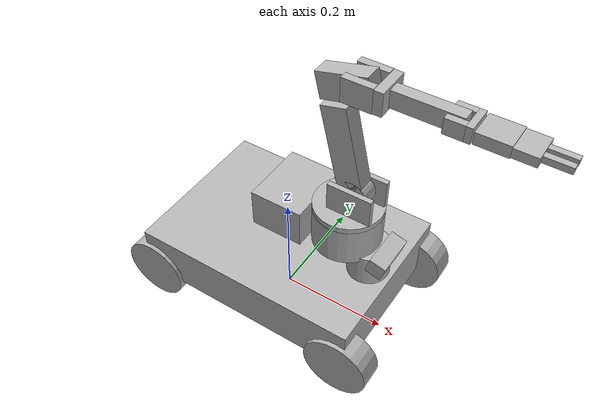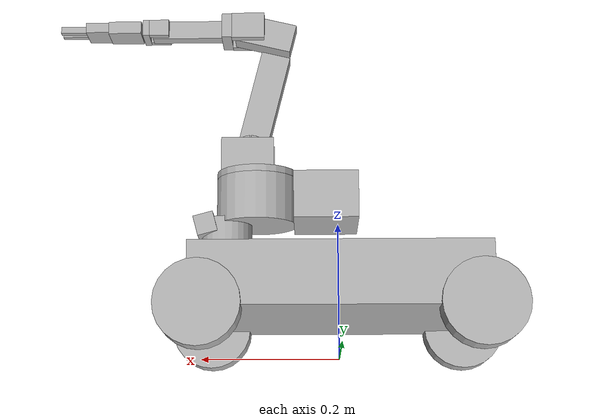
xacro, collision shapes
<?xml version="1.0" ?>
<robot name="four_wheel" xmlns:xacro="http://www.ros.org/wiki/xacro">

<xacro:arg name="use_ros2_control" default="true"/>
<xacro:arg name="sim_mode"         default="true"/>

<xacro:include filename="$(find articubot_one)/description/materials.xacro" />
<xacro:include filename="$(find articubot_one)/description/four_wheel.gazebo" />
<xacro:include filename="$(find articubot_one)/description/arm.xacro" />
<xacro:include filename="$(find articubot_one)/description/arm_gazebo.xacro" />
<xacro:include filename="$(find articubot_one)/description/arm_ros2_control.xacro" />

<xacro:if value="$(arg use_ros2_control)">
  <xacro:include filename="$(find articubot_one)/description/four_wheel.trans" />
</xacro:if>

<!-- Robot structure                                              -->

<link name="base_footprint"/>

<joint name="base_footprint_to_base_link" type="fixed">
  <parent link="base_footprint"/>
  <child link="base_link"/>
  <origin xyz="0 0 0.057" rpy="0 0 0"/>
</joint>

<link name="base_link">
  <inertial>
    <origin xyz="0.0040461 0.0 0.071553" rpy="0 0 0"/>
    <mass value="5.0"/>
    <!-- Box inertia for 0.42 x 0.30 x 0.09 m chassis at 5.0 kg -->
    <inertia ixx="0.04088" iyy="0.07688" izz="0.11100" ixy="0.0" iyz="0.0" ixz="0.0"/>
  </inertial>
  <visual>
    <origin xyz="0 0 0" rpy="0 0 0"/>
    <geometry>
      <mesh filename="file://$(find articubot_one)/meshes/base_link.stl" scale="0.0015 0.0015 0.0015"/>
    </geometry>
    <material name="silver"/>
  </visual>
  <collision>
    <origin xyz="0 0 0.045" rpy="0 0 0"/>
    <geometry>
      <!-- Primitive box replaces mesh collision for stability -->
      <box size="0.42 0.30 0.09"/>
    </geometry>
  </collision>
</link>

<link name="camera_1">
  <inertial>
    <origin xyz="0.0075 0.0 0.0045" rpy="0 0 0"/>
    <mass value="0.003564"/>
    <inertia ixx="2.25e-6" iyy="2.25e-6" izz="2.25e-6" ixy="0.0" iyz="0.0" ixz="0.0"/>
  </inertial>
  <visual>
    <origin xyz="-0.195 0.0 -0.13875" rpy="0 0 0"/>
    <geometry>
      <mesh filename="file://$(find articubot_one)/meshes/camera_1.stl" scale="0.0015 0.0015 0.0015"/>
    </geometry>
    <material name="silver"/>
  </visual>
  <collision>
    <origin xyz="0 0 0" rpy="0 0 0"/>
    <geometry>
      <box size="0.03 0.075 0.03"/>
    </geometry>
  </collision>
</link>

<link name="camera_1_optical_frame"/>
<joint name="camera_1_optical_joint" type="fixed">
  <origin xyz="0 0 0" rpy="${-pi/2} 0 ${-pi/2}"/>
  <parent link="camera_1"/>
  <child link="camera_1_optical_frame"/>
</joint>

<link name="ultra_front_1">
  <inertial>
    <origin xyz="0.0075 0.0 0.012" rpy="0 0 0"/>
    <mass value="0.014256"/>
    <inertia ixx="4.5e-06" iyy="2.25e-6" izz="2.25e-06" ixy="0.0" iyz="0.0" ixz="0.0"/>
  </inertial>
  <visual>
    <origin xyz="-0.195 0.0 -0.00375" rpy="0 0 0"/>
    <geometry>
      <mesh filename="file://$(find articubot_one)/meshes/ultra_front_1.stl" scale="0.0015 0.0015 0.0015"/>
    </geometry>
    <material name="silver"/>
  </visual>
</link>

<link name="ultra_rear_1">
  <inertial>
    <origin xyz="-0.0075 0.0 0.012" rpy="0 0 0"/>
    <mass value="0.014256"/>
    <inertia ixx="4.5e-06" iyy="2.25e-6" izz="2.25e-06" ixy="0.0" iyz="0.0" ixz="0.0"/>
  </inertial>
  <visual>
    <origin xyz="0.195 0.0 -0.00375" rpy="0 0 0"/>
    <geometry>
      <mesh filename="file://$(find articubot_one)/meshes/ultra_rear_1.stl" scale="0.0015 0.0015 0.0015"/>
    </geometry>
    <material name="silver"/>
  </visual>
</link>

<link name="lidar_1">
  <inertial>
    <origin xyz="0.0 0.0 0.015" rpy="0 0 0"/>
    <mass value="0.0699795"/>
    <inertia ixx="2.025e-05" iyy="2.025e-05" izz="3.375e-05" ixy="0.0" iyz="0.0" ixz="0.0"/>
  </inertial>
  <visual>
    <origin xyz="-0.165 0.0 -0.12" rpy="0 0 0"/>
    <geometry>
      <mesh filename="file://$(find articubot_one)/meshes/lidar_1.stl" scale="0.0015 0.0015 0.0015"/>
    </geometry>
    <material name="silver"/>
  </visual>
  <collision>
    <origin xyz="0 0 0" rpy="0 0 0"/>
    <geometry>
      <cylinder radius="0.0375" length="0.06"/>
    </geometry>
  </collision>
</link>

<!-- WHEELS - FIX: Replace mesh collision with cylinder primitive -->
<!-- Wheel radius = 0.06 m, width = 0.045 m                     -->
<!-- Cylinder axis must align with joint axis (Y-axis) → rpy π/2 -->

<link name="left_front_1">
  <inertial>
    <origin xyz="0.0 0.0225 0.0" rpy="0 0 0"/>
    <mass value="0.21036"/>
    <inertia ixx="0.00015075" iyy="0.000252" izz="0.00015075" ixy="0.0" iyz="0.0" ixz="0.0"/>
  </inertial>
  <visual>
    <origin xyz="-0.195 -0.135 -0.00375" rpy="0 0 0"/>
    <geometry>
      <mesh filename="file://$(find articubot_one)/meshes/left_front_1.stl" scale="0.0015 0.0015 0.0015"/>
    </geometry>
    <material name="silver"/>
  </visual>
  <!-- FIX: Cylinder primitive replaces mesh — stable ground contact -->
  <collision>
    <origin xyz="0 0 0" rpy="1.5707963 0 0"/>
    <geometry>
      <cylinder radius="0.06" length="0.045"/>
    </geometry>
  </collision>
</link>

<link name="right_front_1">
  <inertial>
    <origin xyz="0.0 -0.0225 0.0" rpy="0 0 0"/>
    <mass value="0.21036"/>
    <inertia ixx="0.00015075" iyy="0.000252" izz="0.00015075" ixy="0.0" iyz="0.0" ixz="0.0"/>
  </inertial>
  <visual>
    <origin xyz="-0.195 0.135 -0.00375" rpy="0 0 0"/>
    <geometry>
      <mesh filename="file://$(find articubot_one)/meshes/right_front_1.stl" scale="0.0015 0.0015 0.0015"/>
    </geometry>
    <material name="silver"/>
  </visual>
  <collision>
    <origin xyz="0 0 0" rpy="1.5707963 0 0"/>
    <geometry>
      <cylinder radius="0.06" length="0.045"/>
    </geometry>
  </collision>
</link>

<link name="right_rear_1">
  <inertial>
    <origin xyz="0.0 -0.0225 0.0" rpy="0 0 0"/>
    <mass value="0.21036"/>
    <inertia ixx="0.00015075" iyy="0.000252" izz="0.00015075" ixy="0.0" iyz="0.0" ixz="0.0"/>
  </inertial>
  <visual>
    <origin xyz="0.195 0.135 -0.00375" rpy="0 0 0"/>
    <geometry>
      <mesh filename="file://$(find articubot_one)/meshes/right_rear_1.stl" scale="0.0015 0.0015 0.0015"/>
    </geometry>
    <material name="silver"/>
  </visual>
  <collision>
    <origin xyz="0 0 0" rpy="1.5707963 0 0"/>
    <geometry>
      <cylinder radius="0.06" length="0.045"/>
    </geometry>
  </collision>
</link>

<link name="left_rear_1">
  <inertial>
    <origin xyz="0.0 0.0225 0.0" rpy="0 0 0"/>
    <mass value="0.21036"/>
    <inertia ixx="0.00015075" iyy="0.000252" izz="0.00015075" ixy="0.0" iyz="0.0" ixz="0.0"/>
  </inertial>
  <visual>
    <origin xyz="0.195 -0.135 -0.00375" rpy="0 0 0"/>
    <geometry>
      <mesh filename="file://$(find articubot_one)/meshes/left_rear_1.stl" scale="0.0015 0.0015 0.0015"/>
    </geometry>
    <material name="silver"/>
  </visual>
  <collision>
    <origin xyz="0 0 0" rpy="1.5707963 0 0"/>
    <geometry>
      <cylinder radius="0.06" length="0.045"/>
    </geometry>
  </collision>
</link>

<!-- Fixed joints -->
<joint name="Rigid 1" type="fixed">
  <origin xyz="0.195 0.0 0.13875" rpy="0 0.2618 0"/>
  <parent link="base_link"/>
  <child link="camera_1"/>
</joint>

<joint name="Rigid 2" type="fixed">
  <origin xyz="0.195 0.0 0.00375" rpy="0 0 0"/>
  <parent link="base_link"/>
  <child link="ultra_front_1"/>
</joint>

<joint name="Rigid 3" type="fixed">
  <origin xyz="-0.195 0.0 0.00375" rpy="0 0 3.14159"/>
  <parent link="base_link"/>
  <child link="ultra_rear_1"/>
</joint>

<joint name="Rigid 4" type="fixed">
  <origin xyz="0.165 0.0 0.12" rpy="0 0 0"/>
  <parent link="base_link"/>
  <child link="lidar_1"/>
</joint>

<!-- Wheel joints — axis stays Y (0 1 0) for correct skid-steer -->
<joint name="left_front_wheel_joint" type="continuous">
  <origin xyz="0.195 0.135 0.00375" rpy="0 0 0"/>
  <parent link="base_link"/>
  <child link="left_front_1"/>
  <axis xyz="0.0 1.0 0.0"/>
</joint>

<joint name="right_front_wheel_joint" type="continuous">
  <origin xyz="0.195 -0.135 0.00375" rpy="0 0 0"/>
  <parent link="base_link"/>
  <child link="right_front_1"/>
  <axis xyz="0.0 1.0 0.0"/>
</joint>

<joint name="right_rear_wheel_joint" type="continuous">
  <origin xyz="-0.195 -0.135 0.00375" rpy="0 0 0"/>
  <parent link="base_link"/>
  <child link="right_rear_1"/>
  <axis xyz="0.0 1.0 0.0"/>
</joint>

<joint name="left_rear_wheel_joint" type="continuous">
  <origin xyz="-0.195 0.135 0.00375" rpy="0 0 0"/>
  <parent link="base_link"/>
  <child link="left_rear_1"/>
  <axis xyz="0.0 1.0 0.0"/>
</joint>

<!-- Arm + gripper, mounted centered on top of the chassis        -->
<xacro:k12_arm parent="base_link" mount_x="0.12" mount_y="0.0" mount_z="0.142"/>
<xacro:k12_arm_gazebo/>

</robot>

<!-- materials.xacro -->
<robot name="four_wheel" xmlns:xacro="http://www.ros.org/wiki/xacro" >

<material name="silver">
  <color rgba="0.700 0.700 0.700 1.000"/>
</material>

</robot>

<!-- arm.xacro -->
<robot name="k12_arm" xmlns:xacro="http://www.ros.org/wiki/xacro">
  <xacro:include filename="$(find articubot_one)/description/gripper.xacro"/>

  <!-- Properties for 5-DOF arm and gripper -->
  <xacro:property name="mm"         value="0.001"/>
  <xacro:property name="mesh_dir"   value="file://$(find robot_arm_description)/meshes"/>
  <xacro:property name="mesh_scale" value="0.001 0.001 0.001"/>

  <!-- Link dimensions from STL mesh & specs -->
  <xacro:property name="pan_z"            value="0.080"/>
  <xacro:property name="shoulder_axis_x"  value="0.0098"/>
  <xacro:property name="shoulder_axis_z"  value="0.030"/>
  <xacro:property name="ua_pivot_x"       value="0.0"/>
  <xacro:property name="ua_pivot_z"       value="-0.100"/>
  <xacro:property name="ua_elbow_x"       value="0.0475"/>
  <xacro:property name="ua_elbow_z"       value="0.09428"/>
  <xacro:property name="ua_tilt"          value="${atan2(ua_elbow_x-ua_pivot_x, ua_elbow_z-ua_pivot_z)}"/>
  <xacro:property name="upper_arm_length" value="0.200"/>
  <xacro:property name="forearm_length"   value="0.140"/>
  <xacro:property name="wrist_pin_y"      value="0.0075"/>

  <!-- 5th DOF Wrist Roll Link dimensions -->
  <xacro:property name="k12_arm_roll_length" value="0.050"/> <!-- 5.0 cm -->
  <xacro:property name="wrist_roll_width"    value="0.045"/> <!-- 4.5 cm -->
  <xacro:property name="wrist_roll_height"   value="0.019"/> <!-- 1.9 cm -->

  <!-- Gripper dimensions -->
  <xacro:property name="k12_gripper_palm_length"   value="0.035"/>
  <xacro:property name="k12_gripper_palm_width"    value="0.045"/>
  <xacro:property name="k12_gripper_palm_height"   value="0.015"/>
  <xacro:property name="k12_gripper_finger_length" value="0.040"/>
  <xacro:property name="k12_gripper_finger_width"  value="0.010"/>
  <xacro:property name="k12_gripper_finger_height" value="0.010"/> <!-- 1.0 cm thickness -->
  <xacro:property name="k12_gripper_finger_travel" value="0.0115"/> <!-- (3.0cm - 0.7cm)/2 = 1.15cm per finger -->
  <xacro:property name="k12_gripper_finger_gap"    value="0.007"/>  <!-- 0.7 cm closed gap -->

  <!-- Masses -->
  <xacro:property name="base_mass"       value="1.00"/>
  <xacro:property name="shoulder_mass"   value="0.30"/>
  <xacro:property name="upper_arm_mass"  value="0.25"/>
  <xacro:property name="forearm_mass"    value="0.10"/>
  <xacro:property name="wrist_mass"      value="0.03"/>
  <xacro:property name="wrist_roll_mass" value="0.025"/>
  <xacro:property name="palm_mass"       value="0.05"/>
  <xacro:property name="finger_mass"     value="0.015"/>

  <!-- COMs and Inertia tensors -->
  <xacro:property name="base_com" value="-0.0568876 -0.000151026 0.0414031"/>
  <xacro:property name="base_i"   value="0.00274515 0.00536777 0.00712232 -5.5062e-06 0.000157223 3.21412e-07"/>
  <xacro:property name="shoulder_com" value="0.00326334 4.30231e-08 0.00316603"/>
  <xacro:property name="shoulder_i"   value="0.00104644 0.00107327 0.00165751 -1.4246e-10 -9.36904e-05 1.02401e-10"/>
  <xacro:property name="upper_arm_com" value="-0.0173272 -3.85431e-05 0.0978832"/>
  <xacro:property name="upper_arm_i"   value="0.00531897 0.00565327 0.000453664 6.67882e-07 0.000588872 3.93589e-06"/>
  <xacro:property name="forearm_com" value="0.0554396 0.00135289 -1.35141e-10"/>
  <xacro:property name="forearm_i"   value="0.000277503 0.00194742 0.00202719 5.87049e-05 -9.47073e-11 -5.95801e-11"/>
  <xacro:property name="wrist_com" value="0.012098 -0.00221546 -4.1261e-09"/>
  <xacro:property name="wrist_i"   value="0.000250781 0.000175866 0.000321848 -1.21679e-05 9.76777e-11 -1.59523e-11"/>

  <xacro:macro name="mesh_inertial" params="mass com i">
    <inertial>
      <origin xyz="${com}" rpy="0 0 0"/>
      <mass value="${mass}"/>
      <inertia ixx="${mass*float(i.split()[0])}" iyy="${mass*float(i.split()[1])}" izz="${mass*float(i.split()[2])}"
               ixy="${mass*float(i.split()[3])}" ixz="${mass*float(i.split()[4])}" iyz="${mass*float(i.split()[5])}"/>
    </inertial>
  </xacro:macro>

  <xacro:macro name="k12_box_inertial" params="mass x y z ox:=0 oy:=0 oz:=0">
    <inertial>
      <origin xyz="${ox} ${oy} ${oz}" rpy="0 0 0"/>
      <mass value="${mass}"/>
      <inertia
        ixx="${mass * (y * y + z * z) / 12.0}"
        ixy="0.0"
        ixz="0.0"
        iyy="${mass * (x * x + z * z) / 12.0}"
        iyz="0.0"
        izz="${mass * (x * x + y * y) / 12.0}"/>
    </inertial>
  </xacro:macro>

  <xacro:macro name="k12_arm_transmission" params="joint actuator">
    <transmission name="${joint}_transmission">
      <type>transmission_interface/SimpleTransmission</type>
      <joint name="${joint}">
        <hardwareInterface>hardware_interface/PositionJointInterface</hardwareInterface>
      </joint>
      <actuator name="${actuator}">
        <hardwareInterface>hardware_interface/PositionJointInterface</hardwareInterface>
        <mechanicalReduction>1</mechanicalReduction>
      </actuator>
    </transmission>
  </xacro:macro>

  <xacro:macro name="k12_arm" params="parent mount_x mount_y mount_z">
    <joint name="arm_mount_joint" type="fixed">
      <origin xyz="${mount_x} ${mount_y} ${mount_z}" rpy="0 0 0"/>
      <parent link="${parent}"/>
      <child link="arm_base_link"/>
    </joint>

    <!-- Base link -->
    <link name="arm_base_link">
      <visual>
        <origin xyz="0 0 0" rpy="0 0 0"/>
        <geometry><mesh filename="${mesh_dir}/base.stl" scale="${mesh_scale}"/></geometry>
        <material name="silver"/>
      </visual>
      <collision><origin xyz="0 0 0.035" rpy="0 0 0"/><geometry><cylinder radius="0.06" length="0.07"/></geometry></collision>
      <collision><origin xyz="-0.1025 0 0.035" rpy="0 0 0"/><geometry><box size="0.095 0.12 0.07"/></geometry></collision>
      <xacro:mesh_inertial mass="${base_mass}" com="${base_com}" i="${base_i}"/>
    </link>

    <!-- Joint 1: Base Pan (Yaw) -->
    <joint name="arm_base_yaw_joint" type="revolute">
      <parent link="arm_base_link"/>
      <child link="shoulder_link"/>
      <origin xyz="0 0 ${pan_z}" rpy="0 0 0"/>
      <axis xyz="0 0 1"/>
      <limit lower="-1.5708" upper="1.5708" effort="1.0" velocity="3.0"/>
      <dynamics damping="0.05" friction="0.02"/>
    </joint>

    <!-- Link 1: Shoulder Link -->
    <link name="shoulder_link">
      <visual>
        <origin xyz="0 0 0" rpy="0 0 0"/>
        <geometry><mesh filename="${mesh_dir}/shoulder.stl" scale="${mesh_scale}"/></geometry>
        <material name="silver"/>
      </visual>
      <collision><origin xyz="0 0 -0.005" rpy="0 0 0"/><geometry><cylinder radius="0.06" length="0.01"/></geometry></collision>
      <collision><origin xyz="0.014 0.02495 0.025" rpy="0 0 0"/><geometry><box size="0.078 0.0089 0.05"/></geometry></collision>
      <collision><origin xyz="0.014 -0.02495 0.025" rpy="0 0 0"/><geometry><box size="0.078 0.0089 0.05"/></geometry></collision>
      <xacro:mesh_inertial mass="${shoulder_mass}" com="${shoulder_com}" i="${shoulder_i}"/>
    </link>

    <!-- Joint 2: Shoulder Pitch (Lift) -->
    <joint name="arm_shoulder_pitch_joint" type="revolute">
      <parent link="shoulder_link"/>
      <child link="upper_arm_link"/>
      <origin xyz="${shoulder_axis_x} 0 ${shoulder_axis_z}" rpy="0 0 0"/>
      <axis xyz="0 1 0"/>
      <limit lower="-1.3614" upper="1.8500" effort="2.0" velocity="3.0"/>
      <dynamics damping="0.05" friction="0.02"/>
    </joint>

    <!-- Link 2: Upper Arm Link -->
    <link name="upper_arm_link">
      <visual>
        <origin xyz="${-(ua_pivot_x*cos(ua_tilt) - ua_pivot_z*sin(ua_tilt))} 0 ${-(ua_pivot_x*sin(ua_tilt) + ua_pivot_z*cos(ua_tilt))}"
                rpy="0 ${-ua_tilt} 0"/>
        <geometry><mesh filename="${mesh_dir}/upper_arm.stl" scale="${mesh_scale}"/></geometry>
        <material name="silver"/>
      </visual>
      <collision><origin xyz="0 0 0" rpy="${pi/2} ${-ua_tilt} 0"/><geometry><cylinder radius="0.0275" length="0.03"/></geometry></collision>
      <collision><origin xyz="-0.019 0 0.07771" rpy="0 ${-ua_tilt} 0"/><geometry><box size="0.044 0.03 0.16"/></geometry></collision>
      <collision><origin xyz="-0.02229 0 0.19221" rpy="0 ${-ua_tilt} 0"/><geometry><box size="0.086 0.03 0.044"/></geometry></collision>
      <xacro:mesh_inertial mass="${upper_arm_mass}" com="${upper_arm_com}" i="${upper_arm_i}"/>
    </link>

    <!-- Joint 3: Elbow Pitch -->
    <joint name="arm_elbow_pitch_joint" type="revolute">
      <parent link="upper_arm_link"/>
      <child link="forearm_link"/>
      <origin xyz="0 0 ${upper_arm_length}" rpy="0 0 0"/>
      <axis xyz="0 1 0"/>
      <limit lower="-2.40855" upper="1.3439" effort="1.0" velocity="3.0"/>
      <dynamics damping="0.05" friction="0.02"/>
    </joint>

    <!-- Link 3: Forearm Link -->
    <link name="forearm_link">
      <visual>
        <origin xyz="0 0 0" rpy="0 0 ${pi}"/>
        <geometry><mesh filename="${mesh_dir}/fore_arm.stl" scale="${mesh_scale}"/></geometry>
        <material name="silver"/>
      </visual>
      <collision><origin xyz="0.005 0.0216 0" rpy="0 0 0"/><geometry><box size="0.05 0.0128 0.04"/></geometry></collision>
      <collision><origin xyz="0.005 -0.0216 0" rpy="0 0 0"/><geometry><box size="0.05 0.0128 0.04"/></geometry></collision>
      <collision><origin xyz="0.0375 0 0" rpy="0 0 0"/><geometry><box size="0.015 0.056 0.038"/></geometry></collision>
      <collision><origin xyz="0.09875 0 0" rpy="0 0 0"/><geometry><box size="0.1075 0.02 0.028"/></geometry></collision>
      <xacro:mesh_inertial mass="${forearm_mass}" com="${forearm_com}" i="${forearm_i}"/>
    </link>

    <!-- Joint 4: Wrist Pitch -->
    <joint name="arm_wrist_pitch_joint" type="revolute">
      <parent link="forearm_link"/>
      <child link="wrist_link"/>
      <origin xyz="${forearm_length} 0 0" rpy="0 0 0"/>
      <axis xyz="0 1 0"/>
      <limit lower="-1.7802" upper="1.7802" effort="0.2" velocity="3.0"/>
      <dynamics damping="0.05" friction="0.02"/>
    </joint>

    <!-- Link 4: Wrist Link -->
    <link name="wrist_link">
      <visual>
        <origin xyz="${wrist_pin_y} 0 0" rpy="0 0 ${pi/2}"/>
        <geometry><mesh filename="${mesh_dir}/wrist.stl" scale="${mesh_scale}"/></geometry>
        <material name="silver"/>
      </visual>
      <collision><origin xyz="0.0225 0 0" rpy="0 0 0"/><geometry><box size="0.01 0.043 0.025"/></geometry></collision>
      <collision><origin xyz="0.0025 0.016 0" rpy="0 0 0"/><geometry><box size="0.03 0.011 0.025"/></geometry></collision>
      <collision><origin xyz="0.0025 -0.016 0" rpy="0 0 0"/><geometry><box size="0.03 0.011 0.025"/></geometry></collision>
      <xacro:mesh_inertial mass="${wrist_mass}" com="${wrist_com}" i="${wrist_i}"/>
    </link>

    <!-- Joint 5: 5th DOF Wrist Roll -->
    <joint name="arm_wrist_roll_joint" type="revolute">
      <parent link="wrist_link"/>
      <child link="wrist_roll_link"/>
      <origin xyz="0.030 0 0" rpy="0 0 0"/>
      <axis xyz="1 0 0"/>
      <limit lower="-3.14159" upper="3.14159" effort="0.2" velocity="3.0"/>
      <dynamics damping="0.03" friction="0.01"/>
    </joint>

    <!-- Link 5: 5th DOF Wrist Roll Link (5cm L x 4.5cm W x 1.9cm H) -->
    <link name="wrist_roll_link">
      <visual>
        <origin xyz="${k12_arm_roll_length / 2.0} 0 0" rpy="0 0 0"/>
        <geometry>
          <box size="${k12_arm_roll_length} ${wrist_roll_width} ${wrist_roll_height}"/>
        </geometry>
        <material name="silver"/>
      </visual>
      <collision>
        <origin xyz="${k12_arm_roll_length / 2.0} 0 0" rpy="0 0 0"/>
        <geometry>
          <box size="${k12_arm_roll_length} ${wrist_roll_width} ${wrist_roll_height}"/>
        </geometry>
      </collision>
      <xacro:k12_box_inertial
        mass="${wrist_roll_mass}"
        x="${k12_arm_roll_length}"
        y="${wrist_roll_width}"
        z="${wrist_roll_height}"
        ox="${k12_arm_roll_length / 2.0}"/>
    </link>

    <!-- Attach parallel gripper to 5th DOF wrist_roll_link -->
    <xacro:parallel_gripper
      parent="wrist_roll_link"
      palm_length="${k12_gripper_palm_length}"
      palm_width="${k12_gripper_palm_width}"
      palm_height="${k12_gripper_palm_height}"
      palm_mass="${palm_mass}"
      finger_length="${k12_gripper_finger_length}"
      finger_width="${k12_gripper_finger_width}"
      finger_height="${k12_gripper_finger_height}"
      finger_mass="${finger_mass}"
      finger_travel="${k12_gripper_finger_travel}"
      finger_gap="${k12_gripper_finger_gap}"/>

    <xacro:k12_arm_transmission joint="arm_base_yaw_joint" actuator="arm_base_yaw_motor"/>
    <xacro:k12_arm_transmission joint="arm_shoulder_pitch_joint" actuator="arm_shoulder_pitch_motor"/>
    <xacro:k12_arm_transmission joint="arm_elbow_pitch_joint" actuator="arm_elbow_pitch_motor"/>
    <xacro:k12_arm_transmission joint="arm_wrist_pitch_joint" actuator="arm_wrist_pitch_motor"/>
    <xacro:k12_arm_transmission joint="arm_wrist_roll_joint" actuator="arm_wrist_roll_motor"/>
  </xacro:macro>
</robot>

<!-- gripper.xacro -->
<robot name="k12_gripper" xmlns:xacro="http://www.ros.org/wiki/xacro">

  <xacro:macro name="k12_box_inertial" params="mass x y z ox:=0 oy:=0 oz:=0">
    <inertial>
      <origin xyz="${ox} ${oy} ${oz}" rpy="0 0 0"/>
      <mass value="${mass}"/>
      <inertia
        ixx="${mass * (y*y + z*z) / 12.0}"
        ixy="0.0"
        ixz="0.0"
        iyy="${mass * (x*x + z*z) / 12.0}"
        iyz="0.0"
        izz="${mass * (x*x + y*y) / 12.0}"/>
    </inertial>
  </xacro:macro>

  <xacro:macro name="parallel_gripper" params="
    parent
    palm_length
    palm_width
    palm_height
    palm_mass
    finger_length
    finger_width
    finger_height
    finger_mass
    finger_travel
    finger_gap">

    <link name="end_effector">
      <visual>
        <origin xyz="${palm_length / 2.0} 0 0" rpy="0 0 0"/>
        <geometry>
          <box size="${palm_length} ${palm_width} ${palm_height}"/>
        </geometry>
        <material name="silver"/>
      </visual>
      <collision>
        <origin xyz="${palm_length / 2.0} 0 0" rpy="0 0 0"/>
        <geometry>
          <box size="${palm_length} ${palm_width} ${palm_height}"/>
        </geometry>
      </collision>
      <xacro:k12_box_inertial
        mass="${palm_mass}"
        x="${palm_length}"
        y="${palm_width}"
        z="${palm_height}"
        ox="${palm_length / 2.0}"/>
    </link>

    <joint name="end_effector_joint" type="fixed">
      <origin xyz="${k12_arm_roll_length} 0 0" rpy="0 0 0"/>
      <parent link="${parent}"/>
      <child link="end_effector"/>
    </joint>

    <!-- Grasp reference at the center of the finger contact region. No geometry
         or robot dimensions change: this is a coordinate frame only. -->
    <link name="gripper_tcp"/>
    <joint name="gripper_tcp_joint" type="fixed">
      <parent link="end_effector"/>
      <child link="gripper_tcp"/>
      <origin xyz="${palm_length + finger_length / 2.0} 0 0" rpy="0 0 0"/>
    </joint>

    <link name="left_gripper">
      <visual>
        <origin xyz="${finger_length / 2.0} ${finger_gap / 2.0 + finger_width / 2.0} 0" rpy="0 0 0"/>
        <geometry>
          <box size="${finger_length} ${finger_width} ${finger_height}"/>
        </geometry>
        <material name="silver"/>
      </visual>
      <collision>
        <origin xyz="${finger_length / 2.0} ${finger_gap / 2.0 + finger_width / 2.0} 0" rpy="0 0 0"/>
        <geometry>
          <box size="${finger_length} ${finger_width} ${finger_height}"/>
        </geometry>
      </collision>
      <xacro:k12_box_inertial
        mass="${finger_mass}"
        x="${finger_length}"
        y="${finger_width}"
        z="${finger_height}"
        ox="${finger_length / 2.0}"
        oy="${finger_gap / 2.0 + finger_width / 2.0}"/>
    </link>

    <joint name="left_gripper_joint" type="prismatic">
      <origin xyz="${palm_length} 0 0" rpy="0 0 0"/>
      <parent link="end_effector"/>
      <child link="left_gripper"/>
      <axis xyz="0 1 0"/>
      <limit lower="0.0" upper="${finger_travel}" effort="21.97" velocity="0.10"/>
      <dynamics damping="0.5" friction="0.1"/>
    </joint>

    <link name="right_gripper">
      <visual>
        <origin xyz="${finger_length / 2.0} ${-(finger_gap / 2.0 + finger_width / 2.0)} 0" rpy="0 0 0"/>
        <geometry>
          <box size="${finger_length} ${finger_width} ${finger_height}"/>
        </geometry>
        <material name="silver"/>
      </visual>
      <collision>
        <origin xyz="${finger_length / 2.0} ${-(finger_gap / 2.0 + finger_width / 2.0)} 0" rpy="0 0 0"/>
        <geometry>
          <box size="${finger_length} ${finger_width} ${finger_height}"/>
        </geometry>
      </collision>
      <xacro:k12_box_inertial
        mass="${finger_mass}"
        x="${finger_length}"
        y="${finger_width}"
        z="${finger_height}"
        ox="${finger_length / 2.0}"
        oy="${-(finger_gap / 2.0 + finger_width / 2.0)}"/>
    </link>

    <joint name="right_gripper_joint" type="prismatic">
      <origin xyz="${palm_length} 0 0" rpy="0 0 0"/>
      <parent link="end_effector"/>
      <child link="right_gripper"/>
      <axis xyz="0 -1 0"/>
      <limit lower="0.0" upper="${finger_travel}" effort="21.97" velocity="0.10"/>
      <dynamics damping="0.5" friction="0.1"/>
    </joint>

    <transmission name="left_gripper_transmission">
      <type>transmission_interface/SimpleTransmission</type>
      <joint name="left_gripper_joint">
        <hardwareInterface>hardware_interface/PositionJointInterface</hardwareInterface>
      </joint>
      <actuator name="left_gripper_motor">
        <hardwareInterface>hardware_interface/PositionJointInterface</hardwareInterface>
        <mechanicalReduction>1</mechanicalReduction>
      </actuator>
    </transmission>

    <transmission name="right_gripper_transmission">
      <type>transmission_interface/SimpleTransmission</type>
      <joint name="right_gripper_joint">
        <hardwareInterface>hardware_interface/PositionJointInterface</hardwareInterface>
      </joint>
      <actuator name="right_gripper_motor">
        <hardwareInterface>hardware_interface/PositionJointInterface</hardwareInterface>
        <mechanicalReduction>1</mechanicalReduction>
      </actuator>
    </transmission>
  </xacro:macro>
</robot>
